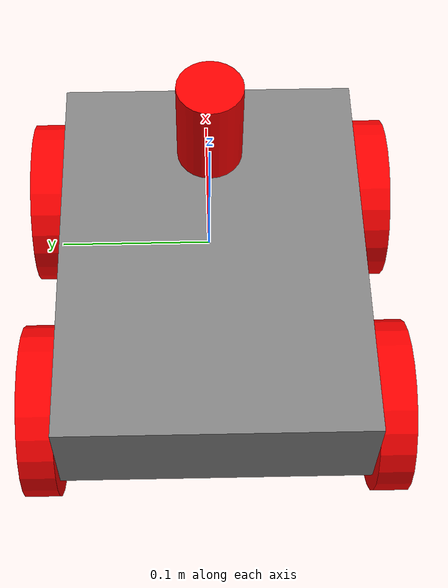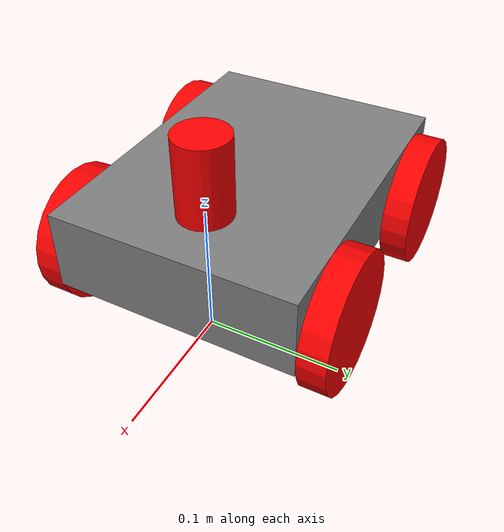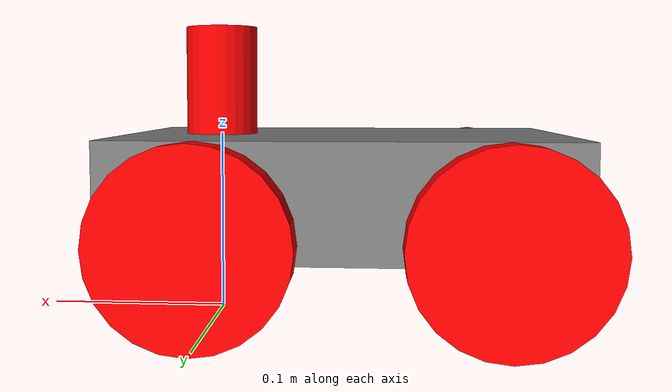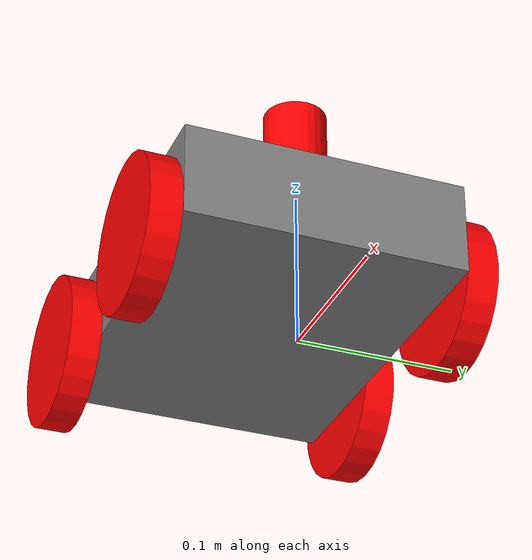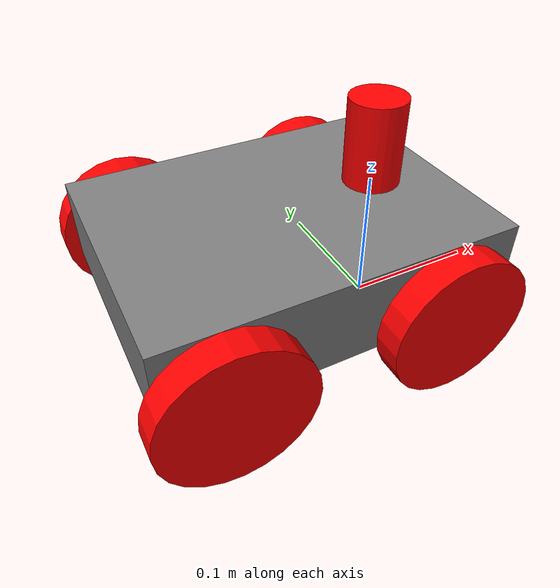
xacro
<?xml version="1.0"?>
<robot name="dtw_robot" xmlns:xacro="http://ros.org/wiki/xacro">
<xacro:include filename="$(find sim)/xacro/laser_macro.xacro" />

  <material name="gray">
    <color rgba="0.5 0.5 0.5 2.5"/>
  </material>
  <material name="red">
    <color rgba="1.0 0.0 0.0 2.5"/>
  </material>

  <xacro:macro name="wheel_macro" params="parent prefix xyz">
    <joint name="${prefix}_joint" type="continuous">
      <origin xyz="${xyz}" rpy="${radians(-90)} 0 0"/>
      <parent link="${parent}"/>
      <child  link="${prefix}_link"/>
      <axis xyz="0 0 1" />
      <limit velocity="12.0" effort="0.4" />
      <dynamics damping="0.1"/>
    </joint>
    <transmission name="${prefix}_trans" type="SimpleTransmission">
      <type>transmission_interface/SimpleTransmission</type>
        <actuator name="${prefix}_motor">
          <mechanicalReduction>1</mechanicalReduction>
        </actuator>
      <joint name="${prefix}_joint">
        <hardwareInterface>hardware_interface/VelocityJointInterface</hardwareInterface>
      </joint>
    </transmission>
     <link name="${prefix}_link">
      <inertial>
        <origin xyz="0 0 0" rpy="0 0 0"/>
        <mass value="0.1"/>
        <inertia ixx="0.0001" ixy="0.0" ixz="0.0" iyy="0.0001" iyz="0.0" izz="0.0001"/>
      </inertial>
      <visual>
        <geometry>
          <cylinder radius="0.05" length="0.02" />
        </geometry>
        <material name="red"/>
      </visual>
      <collision>
        <geometry>
          <cylinder radius="0.05" length="0.02" />
        </geometry>
      </collision>
    </link>
    <gazebo reference="${prefix}_link">
    <material>Gazebo/Red</material>
      <mu1 value="2.5" />
      <mu2 value="2.5" />
      <kp value="50000" />
      <kd value="10" />
    </gazebo>
  </xacro:macro>

  <link name="base_link"/>

  <joint name="body_joint" type="fixed">
    <parent link="base_link"/>
    <child  link="body_link"/>
    <origin xyz="-0.07 0 0.07" rpy="0 0 0"/>
  </joint>
  <link name="body_link">
    <inertial>
      <origin xyz="0 0 0" rpy="0 0 0"/>
      <mass value="1.0"/>
      <inertia ixx="0.001" ixy="0.0" ixz="0.0" iyy="0.001" iyz="0.0" izz="0.001"/>
    </inertial>
    <visual>
      <origin xyz="0 0 0" rpy="0 0 0" />
      <geometry>
        <box size="0.24 0.18 0.06" />
        </geometry>
      <material name="gray" />
    </visual>
    <collision>
      <origin xyz="0 0 0" rpy="0 0 0" />
      <geometry>
        <box size="0.24 0.178 0.06" />
      </geometry>
    </collision>
  </link>

  <xacro:wheel_macro prefix="front_left_wheel" parent="base_link" xyz="0 0.1 0.05"/>
  <xacro:wheel_macro prefix="front_right_wheel" parent="base_link" xyz="0 -0.1 0.05"/>
  <xacro:wheel_macro prefix="back_left_wheel" parent="base_link" xyz="-0.15 0.1 0.05"/>
  <xacro:wheel_macro prefix="back_right_wheel" parent="base_link" xyz="-0.15 -0.1 0.05"/>

  <xacro:laser_macro prefix="front_laser" parent="base_link" xyz="0 0 0.13"/>

  <gazebo reference="body_link">
    <material>Gazebo/Gray</material>
  </gazebo>

   <gazebo>
    <plugin name="gazebo_ros_control" filename="libgazebo_ros_control.so">
      <robotNamespace>/dtw_robot</robotNamespace>
      <robotSimType>gazebo_ros_control/DefaultRobotHWSim</robotSimType>
      <legacyModeNS>true</legacyModeNS>
    </plugin>
  </gazebo>
<gazebo>
    <plugin name="ground_truth" filename="libgazebo_ros_p3d.so">
      <frameName>world</frameName>
      <bodyName>base_link</bodyName>
      <topicName>/tracker</topicName>
      <updateRate>10.0</updateRate>
    </plugin>
  </gazebo>

</robot>

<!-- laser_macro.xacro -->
<robot name="dtw_robot" xmlns:xacro="http://ros.org/wiki/xacro">
  <xacro:macro name="laser_macro" params="parent prefix xyz">
    <joint name="${prefix}_joint" type="fixed">
      <parent link="${parent}"/>
      <child  link="${prefix}_link"/>
      <origin xyz="${xyz}" rpy="0 0 0"/>
    </joint>
    <link name="${prefix}_link">
      <visual>
        <origin xyz="0 0 0" rpy="0 0 0" />
        <geometry>
          <cylinder radius="0.02" length="0.06" />
        </geometry>
        <material name="red" />
      </visual>
      <collision>
        <origin xyz="0 0 0" rpy="0 0 0"/>
        <geometry>
          <cylinder radius="0.02" length="0.06" />
        </geometry>
      </collision>
    </link>
<gazebo reference="${prefix}_link">
      <material>Gazebo/Red</material>
      <sensor type="ray" name="${prefix}">
        <pose>0 0 0 0 0 0</pose>
        <visualize>true</visualize>
        <update_rate>10</update_rate>
        <ray>
          <scan>
            <horizontal>
              <samples>400</samples>
              <resolution>1</resolution>
              <min_angle>${radians(-90)}</min_angle>
              <max_angle>${radians( 90)}</max_angle>
            </horizontal>
          </scan>
          <range>
            <min>0.10</min>
            <max>20.0</max>
            <resolution>0.01</resolution>
          </range>
          <noise>
            <type>gaussian</type>
            <mean>0.0</mean>
            <stddev>0.01</stddev>
          </noise>
        </ray>
        <plugin name="gazebo_ros_lidar_controller" filename="libgazebo_ros_laser.so">
          <topicName>/${prefix}_link/scan</topicName>
          <frameName>${prefix}_link</frameName>
        </plugin>
      </sensor>
    </gazebo>
  </xacro:macro>
</robot>
